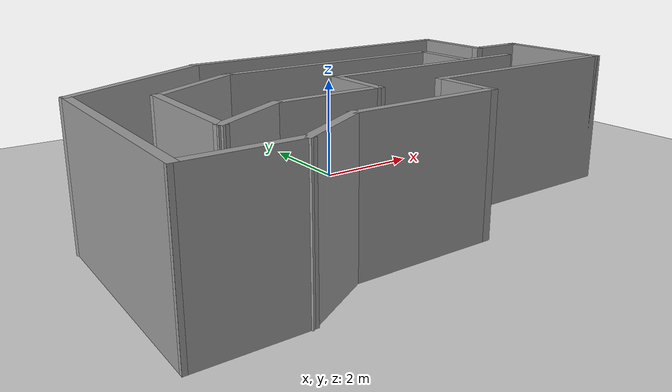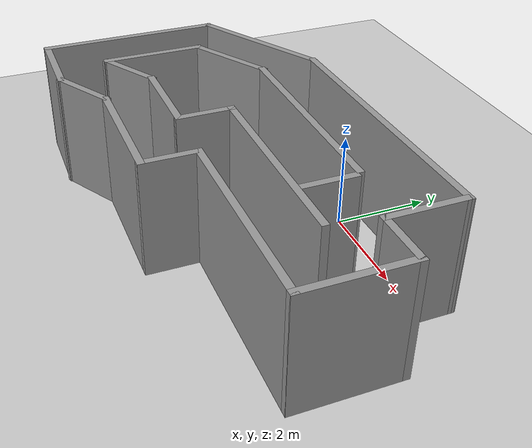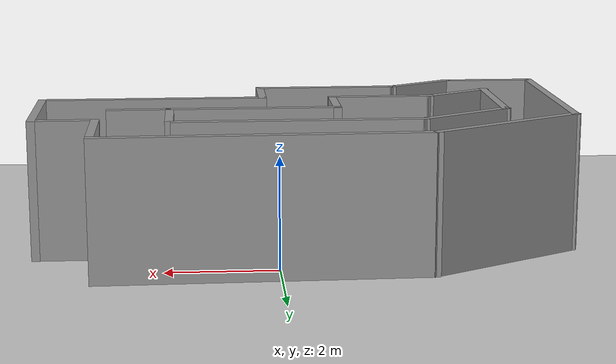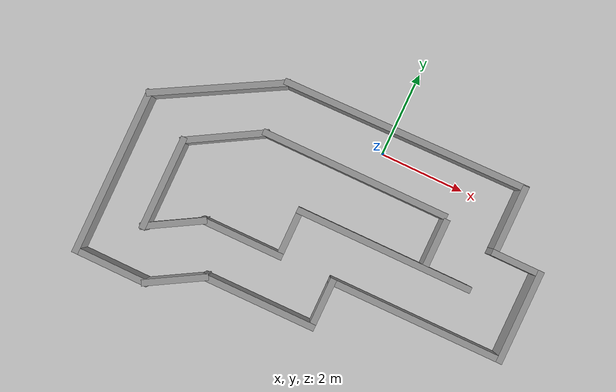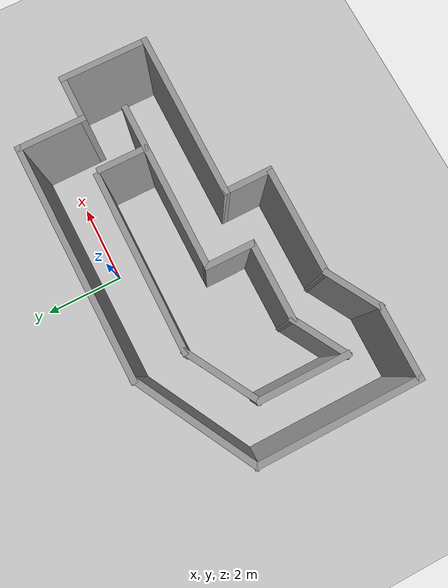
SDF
<sdf version="1.6">
 <world name="default">
  <light name="sun" type="directional">
   <pose>0 0 10 0 -0 0</pose>
   <diffuse>0.8 0.8 0.8 1</diffuse>
   <specular>0.1 0.1 0.1 1</specular>
   <attenuation>
    <range>1000</range>
    <constant>0.9</constant>
    <linear>0.01</linear>
    <quadratic>0.001</quadratic>
   </attenuation>
   <direction>-0.5 0.5 -1</direction>
  </light>
  <model name="ground_plane">
   <static>1</static>
   <link name="link">
    <collision name="collision">
     <geometry><plane><normal>0 0 1</normal><size>100 100</size></plane></geometry>
     <surface><friction><ode><mu>100</mu><mu2>50</mu2></ode></friction></surface>
    </collision>
    <visual name="visual">
     <cast_shadows>0</cast_shadows>
     <geometry><plane><normal>0 0 1</normal><size>100 100</size></plane></geometry>
     <material>
      <script><uri>file://media/materials/scripts/gazebo.material</uri><name>Gazebo/Grey</name></script>
     </material>
    </visual>
   </link>
  </model>
  <gravity>0 0 -9.8</gravity>
  <magnetic_field>6e-06 2.3e-05 -4.2e-05</magnetic_field>
  <atmosphere type="adiabatic"/>
  <physics name="default_physics" default="0" type="ode">
   <max_step_size>0.001</max_step_size>
   <real_time_factor>1</real_time_factor>
   <real_time_update_rate>1000</real_time_update_rate>
  </physics>
  <scene><ambient>0.4 0.4 0.4 1</ambient><background>0.7 0.7 0.7 1</background><shadows>1</shadows></scene>
  <spherical_coordinates>
   <surface_model>EARTH_WGS84</surface_model>
   <latitude_deg>0</latitude_deg>
   <longitude_deg>0</longitude_deg>
   <elevation>0</elevation>
   <heading_deg>0</heading_deg>
  </spherical_coordinates>
  <model name="maze">
   <pose>-0.538476 -2.13812 0 0 -0 0</pose>
   <link name="Wall_106">
    <collision name="Wall_106_Collision">
     <geometry><box><size>2.25 0.15 2.5</size></box></geometry>
     <pose>0 0 1.25 0 -0 0</pose>
    </collision>
    <visual name="Wall_106_Visual">
     <pose>0 0 1.25 0 -0 0</pose>
     <geometry><box><size>2.25 0.15 2.5</size></box></geometry>
     <material>
      <script><uri>file://media/materials/scripts/gazebo.material</uri><name>Gazebo/Grey</name></script>
      <ambient>1 1 1 1</ambient>
     </material>
    </visual>
    <pose>4.79153 0.108243 0 0 -0 1.5708</pose>
   </link>
   <link name="Wall_108">
    <collision name="Wall_108_Collision">
     <geometry><box><size>4.25 0.15 2.5</size></box></geometry>
     <pose>0 0 1.25 0 -0 0</pose>
    </collision>
    <visual name="Wall_108_Visual">
     <pose>0 0 1.25 0 -0 0</pose>
     <geometry><box><size>4.25 0.15 2.5</size></box></geometry>
     <material>
      <script><uri>file://media/materials/scripts/gazebo.material</uri><name>Gazebo/Grey</name></script>
      <ambient>1 1 1 1</ambient>
     </material>
    </visual>
    <pose>1.42881 0.182498 0 0 -0 0</pose>
   </link>
   <link name="Wall_115">
    <collision name="Wall_115_Collision">
     <geometry><box><size>1.25 0.15 2.5</size></box></geometry>
     <pose>0 0 1.25 0 -0 0</pose>
    </collision>
    <visual name="Wall_115_Visual">
     <pose>0 0 1.25 0 -0 0</pose>
     <geometry><box><size>1.25 0.15 2.5</size></box></geometry>
     <material>
      <script><uri>file://media/materials/scripts/gazebo.material</uri><name>Gazebo/Grey</name></script>
      <ambient>1 1 1 1</ambient>
     </material>
    </visual>
    <pose>4.24153 1.15824 0 0 -0 3.14159</pose>
   </link>
   <link name="Wall_117">
    <collision name="Wall_117_Collision">
     <geometry><box><size>1.25 0.15 2.5</size></box></geometry>
     <pose>0 0 1.25 0 -0 0</pose>
    </collision>
    <visual name="Wall_117_Visual">
     <pose>0 0 1.25 0 -0 0</pose>
     <geometry><box><size>1.25 0.15 2.5</size></box></geometry>
     <material>
      <script><uri>file://media/materials/scripts/gazebo.material</uri><name>Gazebo/Grey</name></script>
      <ambient>1 1 1 1</ambient>
     </material>
    </visual>
    <pose>2.41276 0.768532 0 0 -0 1.5708</pose>
   </link>
   <link name="Wall_119">
    <collision name="Wall_119_Collision">
     <geometry><box><size>1.71958 0.15 2.5</size></box></geometry>
     <pose>0 0 1.25 0 -0 0</pose>
    </collision>
    <visual name="Wall_119_Visual">
     <pose>0 0 1.25 0 -0 0</pose>
     <geometry><box><size>1.71958 0.15 2.5</size></box></geometry>
     <material>
      <script><uri>file://media/materials/scripts/gazebo.material</uri><name>Gazebo/Grey</name></script>
      <ambient>1 1 1 1</ambient>
     </material>
    </visual>
    <pose>3.69153 1.94303 0 0 -0 1.5708</pose>
   </link>
   <link name="Wall_120">
    <collision name="Wall_120_Collision">
     <geometry><box><size>5.92214 0.15 2.5</size></box></geometry>
     <pose>0 0 1.25 0 -0 0</pose>
    </collision>
    <visual name="Wall_120_Visual">
     <pose>0 0 1.25 0 -0 0</pose>
     <geometry><box><size>5.92214 0.15 2.5</size></box></geometry>
     <material>
      <script><uri>file://media/materials/scripts/gazebo.material</uri><name>Gazebo/Grey</name></script>
      <ambient>1 1 1 1</ambient>
     </material>
    </visual>
    <pose>0.805822 2.69748 0 0 0 -3.12581</pose>
   </link>
   <link name="Wall_122">
    <collision name="Wall_122_Collision">
     <geometry><box><size>4.5 0.15 2.5</size></box></geometry>
     <pose>0 0 1.25 0 -0 0</pose>
    </collision>
    <visual name="Wall_122_Visual">
     <pose>0 0 1.25 0 -0 0</pose>
     <geometry><box><size>4.5 0.15 2.5</size></box></geometry>
     <material>
      <script><uri>file://media/materials/scripts/gazebo.material</uri><name>Gazebo/Grey</name></script>
      <ambient>1 1 1 1</ambient>
     </material>
    </visual>
    <pose>0.136821 1.4325 0 0 -0 0</pose>
   </link>
   <link name="Wall_69">
    <collision name="Wall_69_Collision">
     <geometry><box><size>3.22004 0.15 2.5</size></box></geometry>
     <pose>0 0 1.25 0 -0 0</pose>
    </collision>
    <visual name="Wall_69_Visual">
     <pose>0 0 1.25 0 -0 0</pose>
     <geometry><box><size>3.22004 0.15 2.5</size></box></geometry>
     <material>
      <script><uri>file://media/materials/scripts/gazebo.material</uri><name>Gazebo/Grey</name></script>
      <ambient>1 1 1 1</ambient>
     </material>
    </visual>
    <pose>-3.42223 1.89214 0 0 0 -2.63516</pose>
   </link>
   <link name="Wall_70">
    <collision name="Wall_70_Collision">
     <geometry><box><size>4 0.15 2.5</size></box></geometry>
     <pose>0 0 1.25 0 -0 0</pose>
    </collision>
    <visual name="Wall_70_Visual">
     <pose>0 0 1.25 0 -0 0</pose>
     <geometry><box><size>4 0.15 2.5</size></box></geometry>
     <material>
      <script><uri>file://media/materials/scripts/gazebo.material</uri><name>Gazebo/Grey</name></script>
      <ambient>1 1 1 1</ambient>
     </material>
    </visual>
    <pose>-4.76457 -0.777442 0 0 0 -1.5708</pose>
   </link>
   <link name="Wall_74">
    <collision name="Wall_74_Collision">
     <geometry><box><size>2.25 0.15 2.5</size></box></geometry>
     <pose>0 0 1.25 0 -0 0</pose>
    </collision>
    <visual name="Wall_74_Visual">
     <pose>0 0 1.25 0 -0 0</pose>
     <geometry><box><size>2.25 0.15 2.5</size></box></geometry>
     <material>
      <script><uri>file://media/materials/scripts/gazebo.material</uri><name>Gazebo/Grey</name></script>
      <ambient>1 1 1 1</ambient>
     </material>
    </visual>
    <pose>-3.64033 -0.542502 0 0 0 -1.5708</pose>
   </link>
   <link name="Wall_81">
    <collision name="Wall_81_Collision">
     <geometry><box><size>1.5 0.15 2.5</size></box></geometry>
     <pose>0 0 1.25 0 -0 0</pose>
    </collision>
    <visual name="Wall_81_Visual">
     <pose>0 0 1.25 0 -0 0</pose>
     <geometry><box><size>1.5 0.15 2.5</size></box></geometry>
     <material>
      <script><uri>file://media/materials/scripts/gazebo.material</uri><name>Gazebo/Grey</name></script>
      <ambient>1 1 1 1</ambient>
     </material>
    </visual>
    <pose>-2.49303 -2.37926 0 0 -0 0.523599</pose>
   </link>
   <link name="Wall_83">
    <collision name="Wall_83_Collision">
     <geometry><box><size>1.83702 0.15 2.5</size></box></geometry>
     <pose>0 0 1.25 0 -0 0</pose>
    </collision>
    <visual name="Wall_83_Visual">
     <pose>0 0 1.25 0 -0 0</pose>
     <geometry><box><size>1.83702 0.15 2.5</size></box></geometry>
     <material>
      <script><uri>file://media/materials/scripts/gazebo.material</uri><name>Gazebo/Grey</name></script>
      <ambient>1 1 1 1</ambient>
     </material>
    </visual>
    <pose>-3.92108 -2.7096 0 0 0 -0.008485</pose>
   </link>
   <link name="Wall_85">
    <collision name="Wall_85_Collision">
     <geometry><box><size>2 0.15 2.5</size></box></geometry>
     <pose>0 0 1.25 0 -0 0</pose>
    </collision>
    <visual name="Wall_85_Visual">
     <pose>0 0 1.25 0 -0 0</pose>
     <geometry><box><size>2 0.15 2.5</size></box></geometry>
     <material>
      <script><uri>file://media/materials/scripts/gazebo.material</uri><name>Gazebo/Grey</name></script>
      <ambient>1 1 1 1</ambient>
     </material>
    </visual>
    <pose>-2.83925 0.969998 0 0 -0 0.523599</pose>
   </link>
   <link name="Wall_87">
    <collision name="Wall_87_Collision">
     <geometry><box><size>2.75 0.15 2.5</size></box></geometry>
     <pose>0 0 1.25 0 -0 0</pose>
    </collision>
    <visual name="Wall_87_Visual">
     <pose>0 0 1.25 0 -0 0</pose>
     <geometry><box><size>2.75 0.15 2.5</size></box></geometry>
     <material>
      <script><uri>file://media/materials/scripts/gazebo.material</uri><name>Gazebo/Grey</name></script>
      <ambient>1 1 1 1</ambient>
     </material>
    </visual>
    <pose>-0.608468 -2.04176 0 0 -0 0</pose>
   </link>
   <link name="Wall_91">
    <collision name="Wall_91_Collision">
     <geometry><box><size>1.5 0.15 2.5</size></box></geometry>
     <pose>0 0 1.25 0 -0 0</pose>
    </collision>
    <visual name="Wall_91_Visual">
     <pose>0 0 1.25 0 -0 0</pose>
     <geometry><box><size>1.5 0.15 2.5</size></box></geometry>
     <material>
      <script><uri>file://media/materials/scripts/gazebo.material</uri><name>Gazebo/Grey</name></script>
      <ambient>1 1 1 1</ambient>
     </material>
    </visual>
    <pose>-3.05576 -1.255 0 0 -0 0.523599</pose>
   </link>
   <link name="Wall_93">
    <collision name="Wall_93_Collision">
     <geometry><box><size>2 0.15 2.5</size></box></geometry>
     <pose>0 0 1.25 0 -0 0</pose>
    </collision>
    <visual name="Wall_93_Visual">
     <pose>0 0 1.25 0 -0 0</pose>
     <geometry><box><size>2 0.15 2.5</size></box></geometry>
     <material>
      <script><uri>file://media/materials/scripts/gazebo.material</uri><name>Gazebo/Grey</name></script>
      <ambient>1 1 1 1</ambient>
     </material>
    </visual>
    <pose>-1.54619 -0.917502 0 0 -0 0</pose>
   </link>
   <link name="Wall_95">
    <collision name="Wall_95_Collision">
     <geometry><box><size>1.25 0.15 2.5</size></box></geometry>
     <pose>0 0 1.25 0 -0 0</pose>
    </collision>
    <visual name="Wall_95_Visual">
     <pose>0 0 1.25 0 -0 0</pose>
     <geometry><box><size>1.25 0.15 2.5</size></box></geometry>
     <material>
      <script><uri>file://media/materials/scripts/gazebo.material</uri><name>Gazebo/Grey</name></script>
      <ambient>1 1 1 1</ambient>
     </material>
    </visual>
    <pose>0.691532 -1.49176 0 0 -0 1.5708</pose>
   </link>
   <link name="Wall_97">
    <collision name="Wall_97_Collision">
     <geometry><box><size>1.25 0.15 2.5</size></box></geometry>
     <pose>0 0 1.25 0 -0 0</pose>
    </collision>
    <visual name="Wall_97_Visual">
     <pose>0 0 1.25 0 -0 0</pose>
     <geometry><box><size>1.25 0.15 2.5</size></box></geometry>
     <material>
      <script><uri>file://media/materials/scripts/gazebo.material</uri><name>Gazebo/Grey</name></script>
      <ambient>1 1 1 1</ambient>
     </material>
    </visual>
    <pose>-0.621192 -0.367502 0 0 -0 1.5708</pose>
   </link>
   <link name="Wall_99">
    <collision name="Wall_99_Collision">
     <geometry><box><size>4.25 0.15 2.5</size></box></geometry>
     <pose>0 0 1.25 0 -0 0</pose>
    </collision>
    <visual name="Wall_99_Visual">
     <pose>0 0 1.25 0 -0 0</pose>
     <geometry><box><size>4.25 0.15 2.5</size></box></geometry>
     <material>
      <script><uri>file://media/materials/scripts/gazebo.material</uri><name>Gazebo/Grey</name></script>
      <ambient>1 1 1 1</ambient>
     </material>
    </visual>
    <pose>2.74153 -0.941757 0 0 -0 0</pose>
   </link>
   <static>1</static>
  </model>
 </world>
</sdf>
